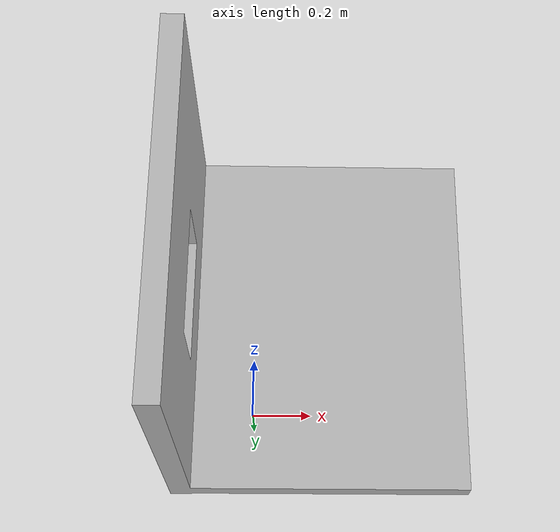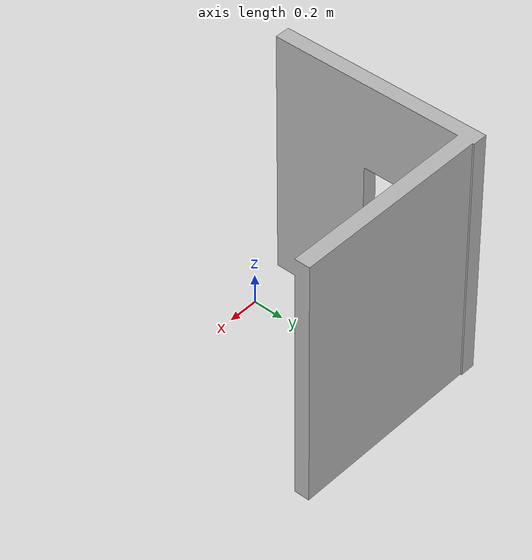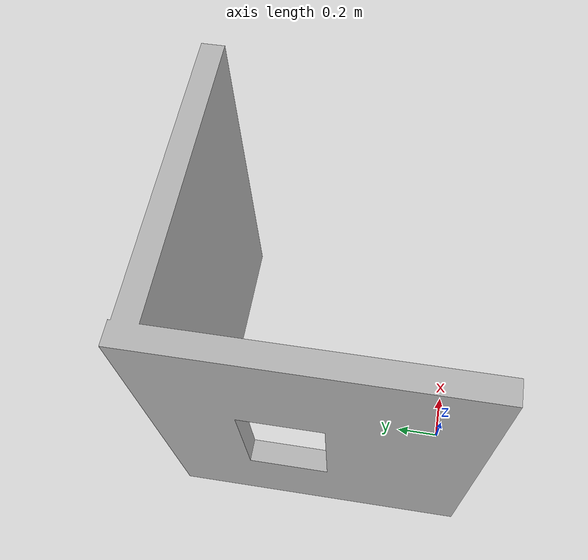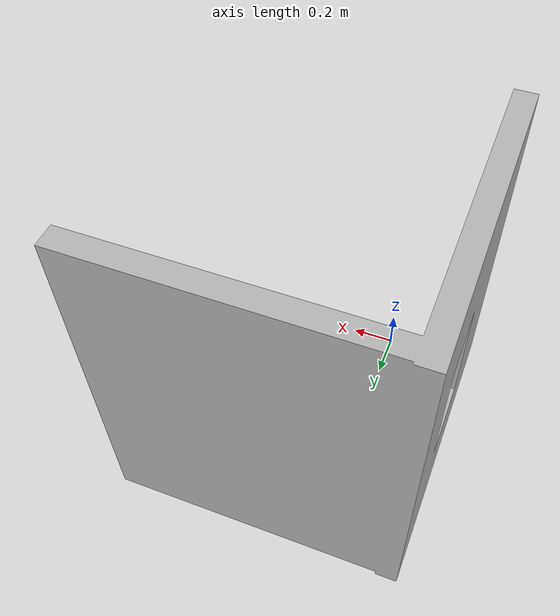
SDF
<?xml version="1.0" ?>
<sdf version="1.5">
  <model name="Wall">
    <static>true</static>
    <link name="link">
      <pose>0 0 0 0 0 0</pose>
      <collision name="collision">
        <geometry>
          <mesh>
            <uri>model://0-Wall/meshes/Wall.dae</uri>
          </mesh>
        </geometry>
      </collision>
      <visual name="visual">
        <geometry>
          <mesh>
            <uri>model://0-Wall/meshes/Wall.dae</uri>
          </mesh>
        </geometry>
        <material>
          <script>
            <uri>model://0-Wall/materials/scripts</uri>
            <uri>model://0-Wall/materials/textures</uri>
            <name>Wall/Diffuse</name>
          </script>
        </material>
      </visual>
    </link>
  </model>
</sdf>
